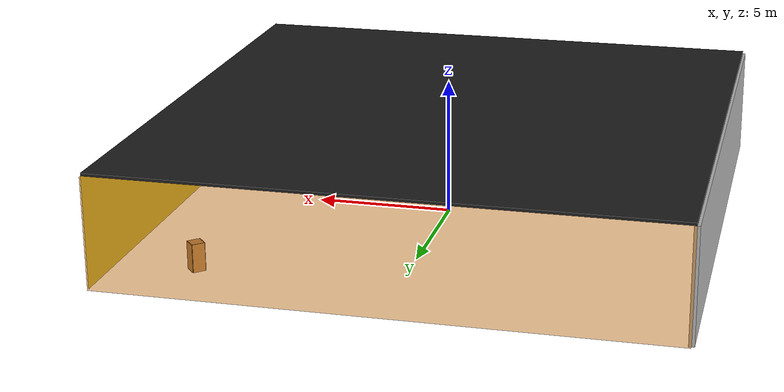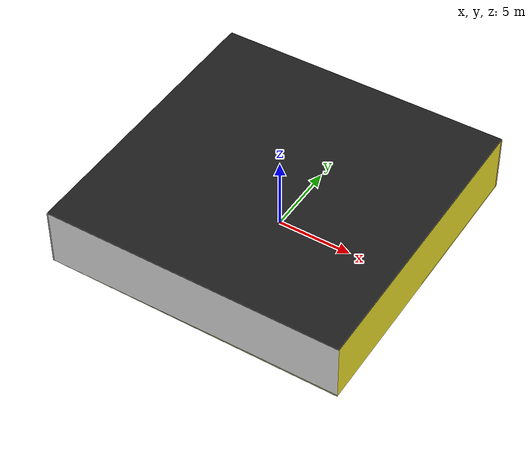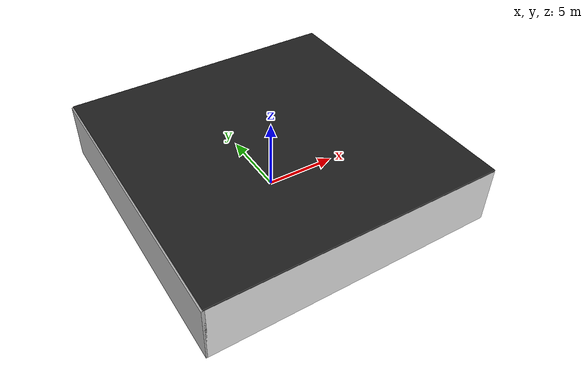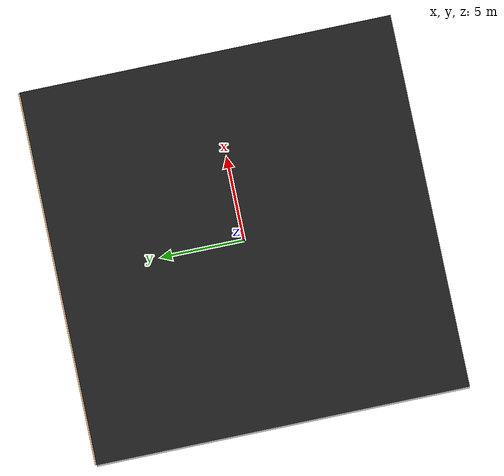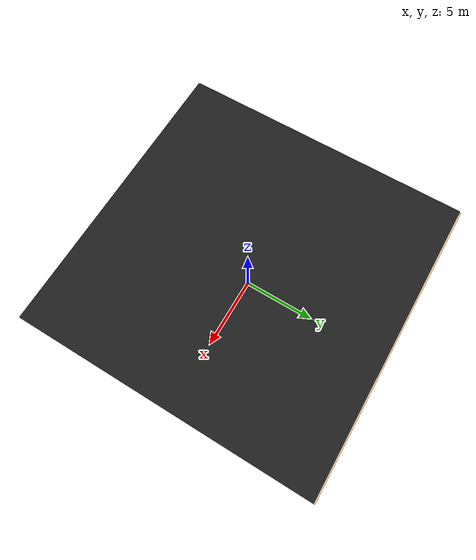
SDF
<sdf version="1.4">
 <world name="default">
  <physics type="ode">
   <max_step_size>0.001</max_step_size>
   <real_time_factor>1</real_time_factor>
   <real_time_update_rate>1000</real_time_update_rate>
   <gravity>0 0 -9.8</gravity>
  </physics>
  <scene><ambient>0.4 0.4 0.4 1</ambient><background>0.7 0.7 0.7 1</background><shadows>1</shadows></scene>
  <model name="Surrounding">
   <static>1</static>
   <link name="Ceiling">
    <collision name="Ceiling_Collision"><geometry><box><size>20 20 0.1</size></box></geometry></collision>
    <visual name="Ceiling_Visual">
     <geometry><box><size>20 20 0.1</size></box></geometry>
     <material>
      <script><uri>file://media/materials/scripts/gazebo.material</uri><name>Gazebo/Black</name></script>
     </material>
    </visual>
    <pose>0 0 4.05 0 0 0</pose>
   </link>
   <link name="Wall_South">
    <collision name="Wall_South_Collision">
     <geometry><box><size>20 0 4</size></box></geometry>
     <pose>0 0 2 0 -0 0</pose>
    </collision>
    <visual name="Wall_South_Visual">
     <pose>0 0 2 0 -0 0</pose>
     <geometry><box><size>20 0 4</size></box></geometry>
     <material>
      <script><uri>file://media/materials/scripts/gazebo.material</uri><name>Gazebo/WhiteGlow</name></script>
     </material>
    </visual>
    <velocity_decay><linear>0</linear><angular>0</angular></velocity_decay>
    <pose>0 -10 0 0 -0 0</pose>
   </link>
   <link name="Wall_East">
    <collision name="Wall_21_Collision">
     <geometry><box><size>20 0 4</size></box></geometry>
     <pose>0 0 2 0 -0 0</pose>
    </collision>
    <visual name="Wall_21_Visual">
     <pose>0 0 2 0 -0 0</pose>
     <geometry><box><size>20 0 4</size></box></geometry>
     <material>
      <script><uri>file://media/materials/scripts/gazebo.material</uri><name>Gazebo/YellowGlow</name></script>
     </material>
    </visual>
    <velocity_decay><linear>0</linear><angular>0</angular></velocity_decay>
    <pose>10 0 0 0 -0 1.5708</pose>
   </link>
   <link name="Wall_North">
    <collision name="Wall_22_Collision">
     <geometry><box><size>20 0.2 4</size></box></geometry>
     <pose>0 0 2 0 -0 0</pose>
    </collision>
    <visual name="Wall_22_Visual">
     <pose>0 0 2 0 -0 0</pose>
     <geometry><box><size>20 0.2 4</size></box></geometry>
     <material>
      <script>
       <uri>file://media/materials/scripts/gazebo.material</uri>
       <name>Gazebo/OrangeTransparent</name>
      </script>
     </material>
    </visual>
    <velocity_decay><linear>0</linear><angular>0</angular></velocity_decay>
    <pose>0 10 0 0 -0 0</pose>
   </link>
   <link name="Wall_West">
    <collision name="Wall_23_Collision">
     <geometry><box><size>20 0.2 4</size></box></geometry>
     <pose>0 0 2 0 -0 0</pose>
    </collision>
    <visual name="Wall_23_Visual">
     <pose>0 0 2 0 -0 0</pose>
     <geometry><box><size>20 0.2 4</size></box></geometry>
     <material>
      <script><uri>file://media/materials/scripts/gazebo.material</uri><name>Gazebo/Pioneer2Body</name></script>
     </material>
    </visual>
    <velocity_decay><linear>0</linear><angular>0</angular></velocity_decay>
    <pose>-10 0 0 0 0 -1.5708</pose>
   </link>
   <link name="Ground_link">
    <collision name="collision">
     <pose>0 0 .05 0 -0 0</pose>
     <geometry><box><size>20 20 0.1</size></box></geometry>
    </collision>
    <visual name="visual">
     <pose>0 0 .05 0 -0 0</pose>
     <geometry><box><size>20 20 0.1</size></box></geometry>
     <material>
      <script>
       <uri>file://media/materials/scripts/gazebo.material</uri>
       <name>Gazebo/YellowTransparent</name>
      </script>
     </material>
    </visual>
   </link>
   <static>1</static>
  </model>
  <spherical_coordinates>
   <surface_model>EARTH_WGS84</surface_model>
   <latitude_deg>0</latitude_deg>
   <longitude_deg>0</longitude_deg>
   <elevation>0</elevation>
   <heading_deg>0</heading_deg>
  </spherical_coordinates>
  <light name="lightball_0" type="diffuse">
   <diffuse>0.8 0.8 0.8 1</diffuse>
   <specular>0.2 0.2 0.2 1</specular>
   <attenuation>
    <range>100</range>
    <constant>0.7</constant>
    <linear>0.01</linear>
    <quadratic>0.001</quadratic>
   </attenuation>
   <direction>-0.5 0.1 -0.9</direction>
   <pose>-5.61548619881 4.0344165894 1.25395323648 0 0 0</pose>
  </light>
  <light name="lightball_1" type="diffuse">
   <diffuse>0.8 0.8 0.8 1</diffuse>
   <specular>0.2 0.2 0.2 1</specular>
   <attenuation>
    <range>100</range>
    <constant>0.7</constant>
    <linear>0.01</linear>
    <quadratic>0.001</quadratic>
   </attenuation>
   <direction>-0.5 0.1 -0.9</direction>
   <pose>5.58577484824 7.14940879343 0.782475789959 0 0 0</pose>
  </light>
  <light name="lightball_2" type="diffuse">
   <diffuse>0.8 0.8 0.8 1</diffuse>
   <specular>0.2 0.2 0.2 1</specular>
   <attenuation>
    <range>100</range>
    <constant>0.7</constant>
    <linear>0.01</linear>
    <quadratic>0.001</quadratic>
   </attenuation>
   <direction>-0.5 0.1 -0.9</direction>
   <pose>-1.31640652568 -2.27819080241 2.45983457306 0 0 0</pose>
  </light>
  <include><uri>model://cabinet</uri><pose>-4.92521422721 -1.56137408806 0 0 0 1.62042242844</pose></include>
  <include><uri>model://cabinet</uri><pose>-1.94869882388 -6.90426571337 0 0 0 0.129099696162</pose></include>
  <include><uri>model://cabinet</uri><pose>7.1014404932 7.5508039277 0 0 0 2.31685832935</pose></include>
 </world>
</sdf>

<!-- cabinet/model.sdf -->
<sdf version="1.5">
  <model name="cabinet">
    <static>true</static>
    <link name="cabinet_bottom_plate">
      <inertial>
        <pose>0 0 -1 0 0 0</pose>
        <inertia>
          <ixx>2.050000</ixx>
          <ixy>0</ixy>
          <ixz>0</ixz>
          <iyy>2.050000</iyy>
          <iyz>0</iyz>
          <izz>2.050000</izz>
        </inertia>
        <mass>25.000000</mass>
      </inertial>
      <collision name="cabinet_bottom_plate_geom">
        <pose>0 0 0.010000 0 0 0</pose>
        <geometry>
          <box>
            <size>0.450000 0.450000 0.020000</size>
          </box>
        </geometry>
      </collision>
      <visual name="cabinet_bottom_plate_geom_visual">
        <pose>0 0 0.010000 0 0 0</pose>
        <geometry>
          <box>
            <size>0.450000 0.450000 0.020000</size>
          </box>
        </geometry>
        <material>
          <script>
            <uri>model://media/materials/scripts/gazebo.material</uri>
            <name>Gazebo/Wood</name>
          </script>
        </material>
      </visual>
      <collision name="cabinet_bottom_plate_geom_cabinet_back_plate">
        <pose>0.235000 0 0.510000 0 0 0</pose>
        <geometry>
          <box>
            <size>0.020000 0.450000 1.020000</size>
          </box>
        </geometry>
      </collision>
      <visual name="cabinet_bottom_plate_geom_cabinet_back_plate_visual">
        <pose>0.235000 0 0.510000 0 0 0</pose>
        <geometry>
          <box>
            <size>0.020000 0.450000 1.020000</size>
          </box>
        </geometry>
        <material>
          <script>
            <uri>model://media/materials/scripts/gazebo.material</uri>
            <name>Gazebo/Wood</name>
          </script>
        </material>
      </visual>
      <collision name="cabinet_bottom_plate_geom_cabinet_left_plate">
        <pose>0 0.235000 0.510000 0 0 0</pose>
        <geometry>
          <box>
            <size>0.450000 0.020000 1.020000</size>
          </box>
        </geometry>
      </collision>
      <visual name="cabinet_bottom_plate_geom_cabinet_left_plate_visual">
        <pose>0 0.235000 0.510000 0 0 0</pose>
        <geometry>
          <box>
            <size>0.450000 0.020000 1.020000</size>
          </box>
        </geometry>
        <material>
          <script>
            <uri>model://media/materials/scripts/gazebo.material</uri>
            <name>Gazebo/Wood</name>
          </script>
        </material>
      </visual>
      <collision name="cabinet_bottom_plate_geom_cabinet_middle_plate">
        <pose>0 0 0.510000 0 0 0</pose>
        <geometry>
          <box>
            <size>0.450000 0.450000 0.020000</size>
          </box>
        </geometry>
      </collision>
      <visual name="cabinet_bottom_plate_geom_cabinet_middle_plate_visual">
        <pose>0 0 0.510000 0 0 0</pose>
        <geometry>
          <box>
            <size>0.450000 0.450000 0.020000</size>
          </box>
        </geometry>
        <material>
          <script>
            <uri>model://media/materials/scripts/gazebo.material</uri>
            <name>Gazebo/Wood</name>
          </script>
        </material>
      </visual>
      <collision name="cabinet_bottom_plate_geom_cabinet_right_plate">
        <pose>0 -0.235000 0.510000 0 0 0</pose>
        <geometry>
          <box>
            <size>0.450000 0.020000 1.020000</size>
          </box>
        </geometry>
      </collision>
      <visual name="cabinet_bottom_plate_geom_cabinet_right_plate_visual">
        <pose>0 -0.235000 0.510000 0 0 0</pose>
        <geometry>
          <box>
            <size>0.450000 0.020000 1.020000</size>
          </box>
        </geometry>
        <material>
          <script>
            <uri>model://media/materials/scripts/gazebo.material</uri>
            <name>Gazebo/Wood</name>
          </script>
        </material>
      </visual>
      <collision name="cabinet_bottom_plate_geom_cabinet_top_plate">
        <pose>0 0 1.010000 0 0 0</pose>
        <geometry>
          <box>
            <size>0.450000 0.450000 0.020000</size>
          </box>
        </geometry>
      </collision>
      <visual name="cabinet_bottom_plate_geom_cabinet_top_plate_visual">
        <pose>0 0 1.010000 0 0 0</pose>
        <geometry>
          <box>
            <size>0.450000 0.450000 0.020000</size>
          </box>
        </geometry>
        <material>
          <script>
            <uri>model://media/materials/scripts/gazebo.material</uri>
            <name>Gazebo/Wood</name>
          </script>
        </material>
      </visual>
    </link>
  </model>
</sdf>
